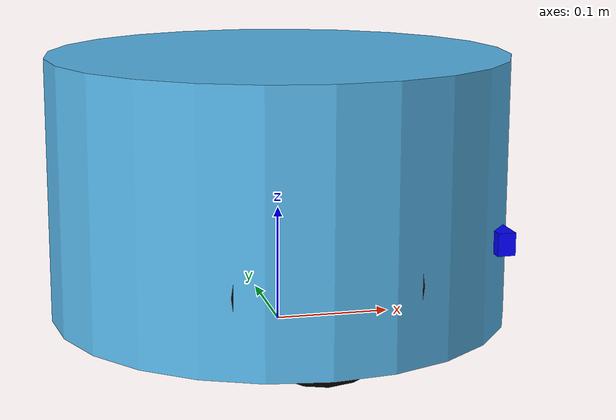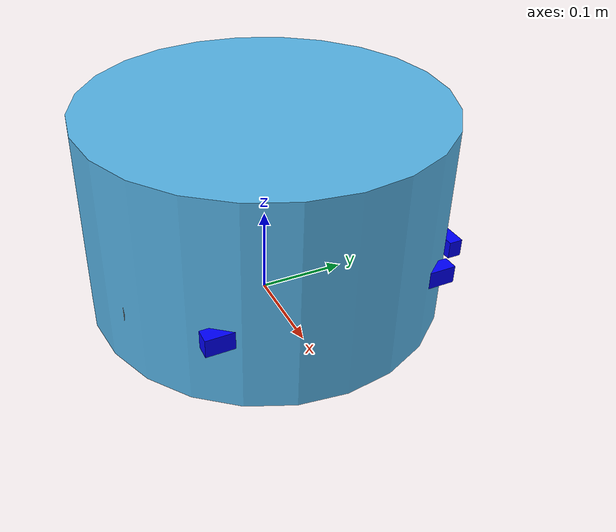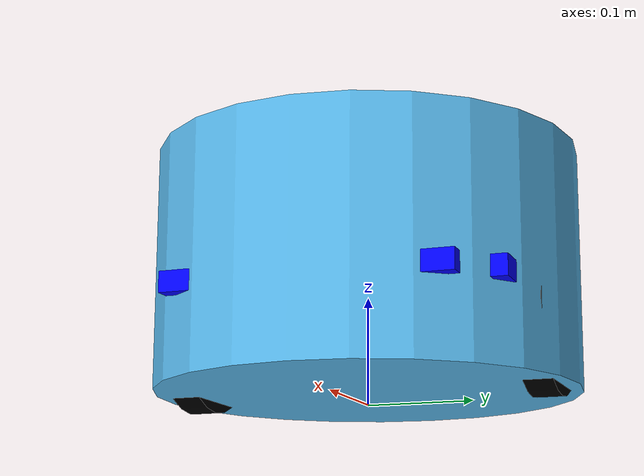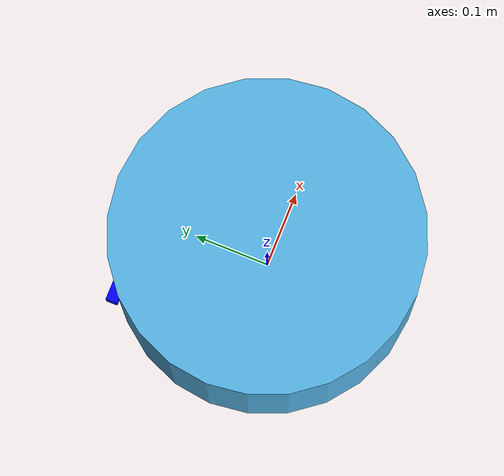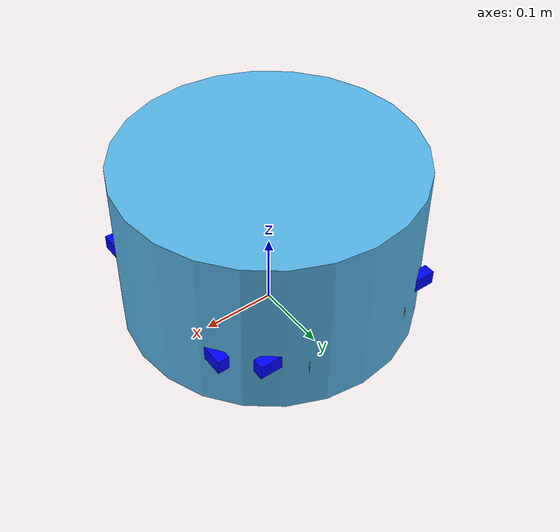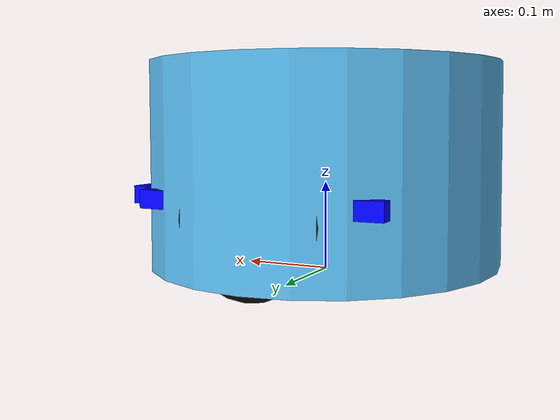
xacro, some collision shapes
<?xml version="1.0"?>
<robot xmlns:xacro="http://www.ros.org/wiki/xacro" name="imrt_bot">

    <xacro:arg name="ros2_control" default="true"/>
    <xacro:arg name="sim_mode" default="false"/>

    <xacro:include filename="robot/robot.urdf.xacro"/>

    <xacro:if value="$(arg ros2_control)">
        <xacro:include filename="control/ros2_controller.urdf.xacro"/>
    </xacro:if>
    <xacro:unless value="$(arg ros2_control)">
        <xacro:include filename="control/gazebo_control.xacro"/>
    </xacro:unless>

</robot>

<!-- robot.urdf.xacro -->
<robot xmlns:xacro="http://www.ros.org/wiki/xacro" name="imrt_bot">

  <xacro:include filename="inertial_macros.xacro"/>
  <xacro:include filename="wheel_macros.xacro"/>

  <material name="black">
    <color rgba="0 0 0 1"/>
  </material>

  <!-- BASE LINK -->

  <link name="base_link">

  </link>

  <joint name="base_footprint_joint" type="fixed">
      <parent link="base_link"/>
      <child link="base_footprint"/>
      <origin xyz="0 0 0" rpy="0 0 0"/>
  </joint>

  <link name="base_footprint">
    <visual>
      <geometry>
        <mesh filename="file://$(find imrt_bot)/meshes/imrt_base_mesh.dae" scale="1 1 1"/>
      </geometry>
      <origin xyz="0 0 ${0.15/2}" rpy="0 0 0"/>
    </visual>
    <collision>
      <geometry>
        <cylinder length="0.225" radius="${0.395/2}"/>
      </geometry>
      <origin xyz="0 0 ${0.225/2+0.01}" rpy="0 0 0"/>
    </collision>
  </link>

  <gazebo reference="base_footprint">
      <kp>1000000.0</kp>
      <kd>1.0</kd>
      <mu1>0.001</mu1>
      <mu2>0.001</mu2>
  </gazebo>

  <xacro:revolut_wheel_effort name="left_wheel" length="0.027" radius="${0.15/2}" xyz="0 ${0.336/2} ${0.15/2}" rpy="${pi/2} 0 0" mass="0.5"/>
  <xacro:revolut_wheel_effort name="right_wheel" length="0.027" radius="${0.15/2}" xyz="0 ${-0.336/2} ${0.15/2}" rpy="${pi/2} 0 0" mass="0.5"/>

  <joint name="inertial_joint" type="fixed">
    <parent link="base_footprint"/>
    <child link="inertial_link"/>
    <origin xyz="0 0 ${0.225/2}" rpy="0 0 0"/>
  </joint>

  <link name="inertial_link">
    <xacro:inertial_cylinder mass="0.4" length="0.15" radius="${0.395/2}">
      <origin xyz="0 0 0" rpy="0 0 0"/>
    </xacro:inertial_cylinder>
  </link>

  <xacro:include filename="range_sensor.urdf.xacro" />
  <xacro:add_range_sensor sensor_name="rangesens_1" sensor_xyz="0.16 -0.11 0.091" sensor_rpy="0 0 0" />
  <xacro:add_range_sensor sensor_name="rangesens_2" sensor_xyz="0.16 0.11 0.091" sensor_rpy="0 0 0" />
  <xacro:add_range_sensor sensor_name="rangesens_3" sensor_xyz="0.11 0.16 0.091" sensor_rpy="0 0 1.5708" />
  <xacro:add_range_sensor sensor_name="rangesens_4" sensor_xyz="-0.11 0.16 0.091" sensor_rpy="0 0 1.5708" />

</robot>

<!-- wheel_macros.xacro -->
<robot xmlns:xacro="http://www.ros.org/wiki/xacro">

    <xacro:include filename="inertial_macros.xacro"/>

    <xacro:macro name="revolut_wheel_effort" params="name xyz rpy length radius mass">

        <link name="${name}_link">
            <visual>
                <geometry>
                    <cylinder length="${length}" radius="${radius}"/>
                </geometry>
                <material name="black"/>
            </visual>
            <collision>
                <geometry>
                    <cylinder length="${length}" radius="${radius}"/>
                </geometry>
            </collision>
            <xacro:inertial_cylinder mass="${mass}" length="${length}" radius="${radius}">
                <origin xyz="0 0 0" rpy="0 0 0"/>
            </xacro:inertial_cylinder>
        </link>

        <joint name="${name}_joint" type="continuous">
            <parent link="base_footprint"/>
            <child link="${name}_link"/>
            <origin xyz="${xyz}" rpy="${pi/2} 0 0"/>
            <limit effort="200" velocity="1000"/>
            <axis xyz="0 0 -1"/>
        </joint>

        <gazebo reference="${name}_link">
            <material>Gazebo/Black</material>
            <kp>1000000.0</kp>
            <kd>1.0</kd>
            <mu1>1.0</mu1>
            <mu2>1.0</mu2>
        </gazebo>
    </xacro:macro>

</robot>

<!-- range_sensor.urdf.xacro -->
<robot xmlns:xacro="http://www.ros.org/wiki/xacro" name="range_sensor">

<xacro:arg name="robot_namespace" default="/" />

<!-- ADD RANGE SENSOR MACRO -->
  <xacro:macro name="add_range_sensor" params="sensor_name sensor_xyz sensor_rpy">

    <link name="${sensor_name}">
      <visual>
        <geometry>
          <box size="0.015 0.045 0.019" />
        </geometry>
        <origin xyz="0 0 0" rpy="0 0 0" />
        <material name="rangesens_blue">
          <color rgba="0 0 1 1" />
        </material>
      </visual>
    </link>

    <joint name="${sensor_name}_joint" type="fixed">
      <origin xyz="${sensor_xyz}" rpy="${sensor_rpy}" />
      <parent link="base_footprint" />
      <child link="${sensor_name}" />
    </joint>

    <gazebo reference="${sensor_name}">
      <material>Gazebo/Blue</material>
      <sensor type="gpu_lidar" name="${sensor_name}">
        <pose>0 0 0 0 0 0</pose>
        <visualize>true</visualize>
        <update_rate>10</update_rate>
        <topic>${sensor_name}</topic>
        <gz_frame_id>${sensor_name}</gz_frame_id>
        <lidar>
           <scan>
              <horizontal>
                 <samples>10</samples>
                 <resolution>1</resolution>
                 <min_angle>-0.03</min_angle>
                 <max_angle>0.03</max_angle>
              </horizontal>
              <vertical>
                 <samples>10</samples>
                 <resolution>1</resolution>
                 <min_angle>-0.03</min_angle>
                 <max_angle>0.03</max_angle>
              </vertical>
           </scan>
           <range>
              <min>0.01</min>
              <max>2.55</max>
              <resolution>0.01</resolution>
           </range>
        </lidar>
      </sensor>
    </gazebo>

  </xacro:macro>

  </robot>
